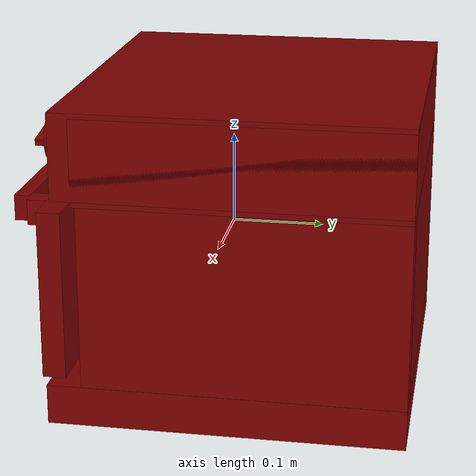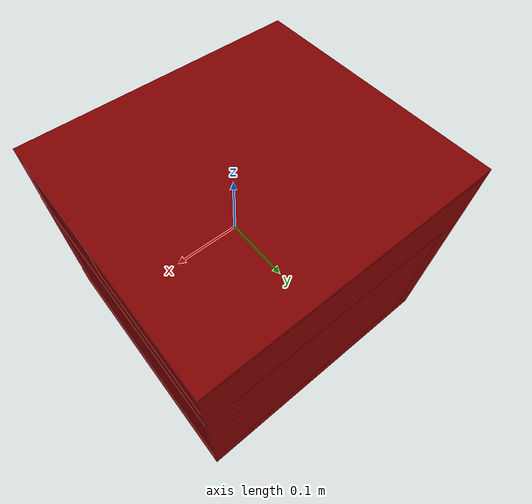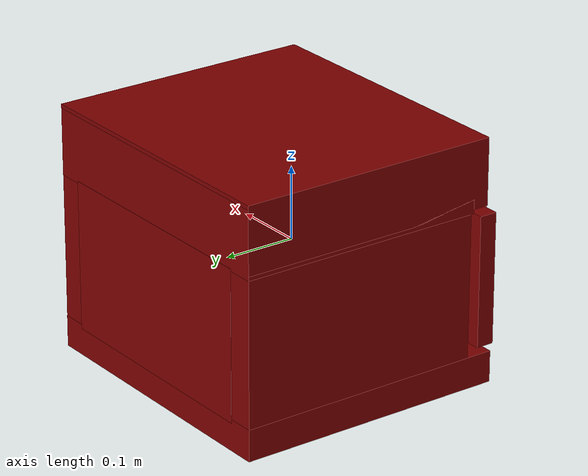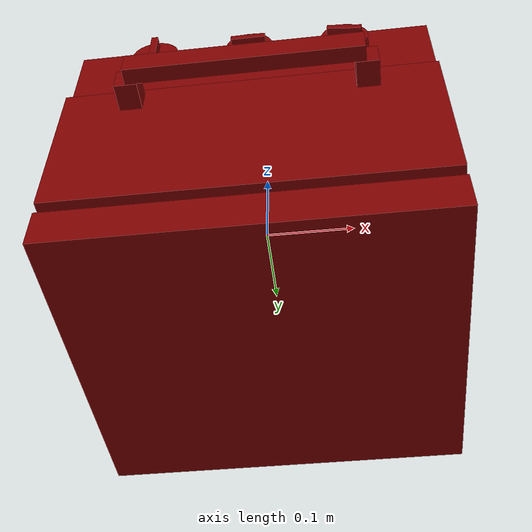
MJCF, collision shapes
<?xml version='1.0' encoding='UTF-8'?>
<mujoco model="model">
  <option timestep="0.002" gravity="0.0 0.0 -9.81"/>
  <compiler angle="radian"/>
  <asset>
    <mesh file="visuals/door.obj" name="door_vis"/>
    <mesh file="visuals/knob_function.obj" name="knob_function_vis"/>
    <mesh file="visuals/knob_temp.obj" name="knob_temp_vis"/>
    <mesh file="visuals/knob_time.obj" name="knob_time_vis"/>
    <mesh file="visuals/Body001.obj" name="Body001_vis"/>
    <mesh file="visuals/tray0.obj" name="tray0_vis"/>
    <mesh file="visuals/window.obj" name="window_vis"/>
    <texture file="visuals/T_BC001.png" name="Body001_material" type="2d"/>
    <material name="Body001_material" rgba="1 1 1 1.0" texture="Body001_material" shininess="0.4472135901451111" specular="1"/>
    <texture file="visuals/T_BC001.png" name="door_material" type="2d"/>
    <material name="door_material" rgba="1 1 1 1.0" texture="door_material" shininess="0.4472135901451111" specular="1"/>
    <texture file="visuals/T_BC001.png" name="window_material" type="2d"/>
    <material name="window_material" rgba="1 1 1 0.800000011920929" texture="window_material" shininess="0.4472135901451111" specular="0.3103448502657381"/>
    <texture file="visuals/T_BC001.png" name="knob_function_material" type="2d"/>
    <material name="knob_function_material" rgba="1 1 1 1.0" texture="knob_function_material" shininess="0.4472135901451111" specular="0.3103448502657381"/>
    <texture file="visuals/T_BC001.png" name="knob_temp_material" type="2d"/>
    <material name="knob_temp_material" rgba="1 1 1 1.0" texture="knob_temp_material" shininess="0.4472135901451111" specular="0.3103448502657381"/>
    <texture file="visuals/T_BC001.png" name="knob_time_material" type="2d"/>
    <material name="knob_time_material" rgba="1 1 1 1.0" texture="knob_time_material" shininess="0.4472135901451111" specular="0.3103448502657381"/>
    <texture file="visuals/T_BC001.png" name="tray0_material" type="2d"/>
    <material name="tray0_material" rgba="1 1 1 1.0" texture="tray0_material" shininess="0.4472135901451111" specular="2"/>
  </asset>
  <default>
    <default class="visual">
      <geom conaffinity="0" contype="0" group="1" type="mesh"/>
    </default>
    <default class="collision">
      <geom group="0" rgba="0.5 0 0 0.5"/>
    </default>
    <default class="spawn">
      <geom group="0" rgba="1 1 1 0.5" contype="0" conaffinity="0"/>
      <site group="0" rgba="1 1 1 0.5"/>
    </default>
    <default class="region">
      <geom group="1" conaffinity="0" contype="0" rgba="0 1 0 0"/>
    </default>
  </default>
  <worldbody>
    <body>
      <body name="object">
        <geom mesh="Body001_vis" type="mesh" solimp="0.998 0.998 0.001" solref="0.001 1" friction="0.95 0.3 0.1" class="visual" material="Body001_material"/>
        <geom class="collision" type="box" pos="-0.18147674202919006 0.04236263409256935 0.00031111846328713" size="0.021755272522568703 0.17016175389289856 0.16772650182247162" quat="1.0 0.0 0.0 0.0"/>
        <geom class="collision" type="box" pos="0.1809757947921753 0.04236263036727905 0.00031111299176700413" size="0.021713009104132652 0.17016175389289856 0.16772650182247162" quat="1.0 0.0 0.0 0.0"/>
        <geom class="collision" type="box" pos="-0.0001479433849453926 0.029490487650036812 0.1237911581993103" size="0.20309820771217346 0.18304158747196198 0.045912425965070724" quat="1.0 0.0 0.0 0.0"/>
        <geom class="collision" type="box" pos="-0.0001479376805946231 0.023927586153149605 -0.14740148186683655" size="0.20309823751449585 0.18868109583854675 0.02170015498995781" quat="1.0 0.0 0.0 0.0"/>
        <geom class="collision" type="box" pos="0.0008273124694824219 0.19466279447078705 -0.02781521901488304" size="0.1677703559398651 0.018283039331436157 0.1032940223813057" quat="1.0 0.0 0.0 0.0"/>
        <geom class="collision" type="box" pos="-0.0001479433849453926 0.040158651769161224 0.11822858452796936" size="0.20309820771217346 0.17237375676631927 0.045912425965070724" quat="1.0 0.0 0.0 0.0"/>
        <body name="door">
          <joint axis="1.0 0.0 0.0" pos="-2.3642182895855512e-06 -0.16906316578388214 -0.11806919425725937" limited="true" name="door_joint" range="0.0 1.4707963267948966" type="hinge" damping="1" frictionloss="1" armature=".01" stiffness="0.05"/>
          <geom mesh="door_vis" type="mesh" solimp="0.998 0.998 0.001" solref="0.001 1" friction="0.95 0.3 0.1" class="visual" material="door_material"/>
          <geom class="collision" type="box" pos="-0.12593038380146027 -0.18403750658035278 0.042177170515060425" size="0.012202798388898373 0.014876741915941238 0.013994084671139717" quat="1.0 0.0 0.0 0.0"/>
          <geom class="collision" type="box" pos="0.12518303096294403 -0.18403750658035278 0.042177170515060425" size="0.012202798388898373 0.014876741915941238 0.013994084671139717" quat="1.0 0.0 0.0 0.0"/>
          <geom class="collision" type="box" pos="-0.0009195655584335327 -0.20828256011009216 0.042177170515060425" size="0.12505295872688293 0.008632255718111992 0.013994105160236359" quat="1.0 0.0 0.0 0.0" name="door_handle_main"/>
          <geom class="collision" type="box" pos="-0.00014796853065490723 -0.1562410593032837 -0.02563704364001751" size="0.20258504152297974 0.012339463457465172 0.09060528129339218" quat="1.0 0.0 0.0 0.0" name="door_main"/>
          <body name="window">
            <geom mesh="window_vis" type="mesh" solimp="0.998 0.998 0.001" solref="0.001 1" friction="0.95 0.3 0.1" class="visual" material="window_material"/>
            <geom class="collision" type="box" pos="-0.0009023664752021432 -0.15787915885448456 -0.03828054666519165" size="0.1377168595790863 0.001710304873995483 0.05485491082072258" quat="1.0 0.0 0.0 0.0"/>
          </body>
        </body>
        <body name="knob_function">
          <joint axis="0.0 1.0 0.0" pos="0.10623599588871002 -0.1735873520374298 0.11894413083791733" limited="true" name="knob_function_joint" range="0.0 3.2288591161895095" type="hinge" damping="0.05" armature="1" frictionloss="0.75"/>
          <geom mesh="knob_function_vis" type="mesh" solimp="0.998 0.998 0.001" solref="0.001 1" friction="0.95 0.3 0.1" class="visual" material="knob_function_material"/>
          <geom class="collision" type="cylinder" pos="0.10623583197593689 -0.17050550878047943 0.11894413083791733" size="0.02601364254951477 0.00852160807698965" quat="0.7071068286895752 0.7071067690849304 -1.5700924318127872e-16 -5.9269340452702814e-24" friction="100 0.5 0.01"/>
          <geom class="collision" type="box" pos="0.10623599588871002 -0.1830083280801773 0.11900540441274643" size="0.0036553440149873495 0.007625086233019829 0.018960244953632355" quat="0.6462909579277039 0.0 0.7630910873413086 0.0" name="knob_function_main" friction="100 0.5 0.01"/>
        </body>
        <body name="knob_temp">
          <joint axis="0.0 1.0 0.0" pos="-0.0001539599907118827 -0.17358732223510742 0.11894413083791733" limited="true" name="knob_temp_joint" range="0.0 3.2288591161895095" type="hinge" damping="0.05" armature="1" frictionloss="0.75"/>
          <geom mesh="knob_temp_vis" type="mesh" solimp="0.998 0.998 0.001" solref="0.001 1" friction="0.95 0.3 0.1" class="visual" material="knob_temp_material"/>
          <geom class="collision" type="cylinder" pos="-0.00015396438539028168 -0.17050547897815704 0.11894413083791733" size="0.02601364254951477 0.00852160807698965" quat="0.7071068286895752 0.7071067690849304 -1.5700924318127872e-16 -5.9269340452702814e-24" friction="100 0.5 0.01"/>
          <geom class="collision" type="box" pos="-0.0001539599907118827 -0.1830083280801773 0.11900540441274643" size="0.018960250541567802 0.007625086233019829 0.003655344946309924" quat="1.0 0.0 0.0 0.0" name="knob_temp_main" friction="100 0.5 0.01"/>
        </body>
        <body name="knob_time">
          <joint axis="0.0 1.0 0.0" pos="-0.10654377192258835 -0.17358732223510742 0.11894413083791733" limited="true" name="knob_time_joint" range="0.0 3.9269908169872414" type="hinge" damping="0.05" armature="1" frictionloss="0.75"/>
          <geom mesh="knob_time_vis" type="mesh" solimp="0.998 0.998 0.001" solref="0.001 1" friction="0.95 0.3 0.1" class="visual" material="knob_time_material"/>
          <geom class="collision" type="cylinder" pos="-0.10654377192258835 -0.17050547897815704 0.11894413083791733" size="0.02601364254951477 0.00852160807698965" quat="0.7071068286895752 0.7071067690849304 -1.5700924318127872e-16 -5.9269340452702814e-24" friction="100 0.5 0.01"/>
          <geom class="collision" type="box" pos="-0.1065550297498703 -0.1830083280801773 0.11900540441274643" size="0.0036553465761244297 0.007625086233019829 0.018960244953632355" quat="1.0 0.0 0.0 0.0" name="knob_time_main" friction="100 0.5 0.01"/>
        </body>
        <body name="tray0">
          <geom class="region" name="reg_tray0" type="box" pos="-0.0003946572542190552 0.016346793621778488 0.015089692547917366" size="0.14403551614284515 0.09463154694437981 0.0571078991740942"/>
          <joint axis="0.0 -1.0 0.0" pos="-7.450580596923828e-08 0.015808526426553726 -0.03671008720993996" limited="true" name="tray0_joint" range="0.0 0.2" type="slide" damping="1" frictionloss="1" armature=".01" stiffness="0.05"/>
          <geom mesh="tray0_vis" type="mesh" solimp="0.998 0.998 0.001" solref="0.001 1" friction="0.95 0.3 0.1" class="visual" material="tray0_material"/>
          <geom class="collision" type="box" pos="-1.637882087379694e-05 0.016132550314068794 -0.04400089755654335" size="0.1500629335641861 0.09756642580032349 0.0018373767379671335" quat="1.0 0.0 0.0 0.0"/>
          <geom class="collision" type="box" pos="-0.1469087153673172 0.016132550314068794 -0.03563903272151947" size="0.0019273675279691815 0.10068251192569733 0.00791023951023817" quat="1.0 0.0 0.0 0.0"/>
          <geom class="collision" type="box" pos="0.14828330278396606 0.016132550314068794 -0.03563903272151947" size="0.0019273672951385379 0.10068262368440628 0.007910247892141342" quat="1.0 0.0 0.0 0.0"/>
          <geom class="collision" type="box" pos="0.0014555745292454958 0.11549030244350433 -0.03563903272151947" size="0.14862379431724548 0.0019273749785497785 0.007910311222076416" quat="1.0 0.0 0.0 0.0"/>
          <geom class="collision" type="box" pos="0.0014555745292454958 -0.08175325393676758 -0.03563903272151947" size="0.14714911580085754 0.0019273776561021805 0.007910311222076416" quat="1.0 0.0 0.0 0.0"/>
        </body>
        <geom class="region" name="reg_main" type="box" pos="0.0 0.023186296224594116 0.0" size="0.2056337127685547 0.1933275887966156 0.17189757323265076"/>
      </body>
    </body>
  </worldbody>
  <actuator>
    <motor name="door_joint_actuator" joint="door_joint" gear="50"/>
    <motor name="knob_function_joint_actuator" joint="knob_function_joint" gear="50"/>
    <motor name="knob_temp_joint_actuator" joint="knob_temp_joint" gear="50"/>
    <motor name="knob_time_joint_actuator" joint="knob_time_joint" gear="50"/>
    <motor name="tray0_joint_actuator" joint="tray0_joint" gear="50"/>
  </actuator>
</mujoco>
